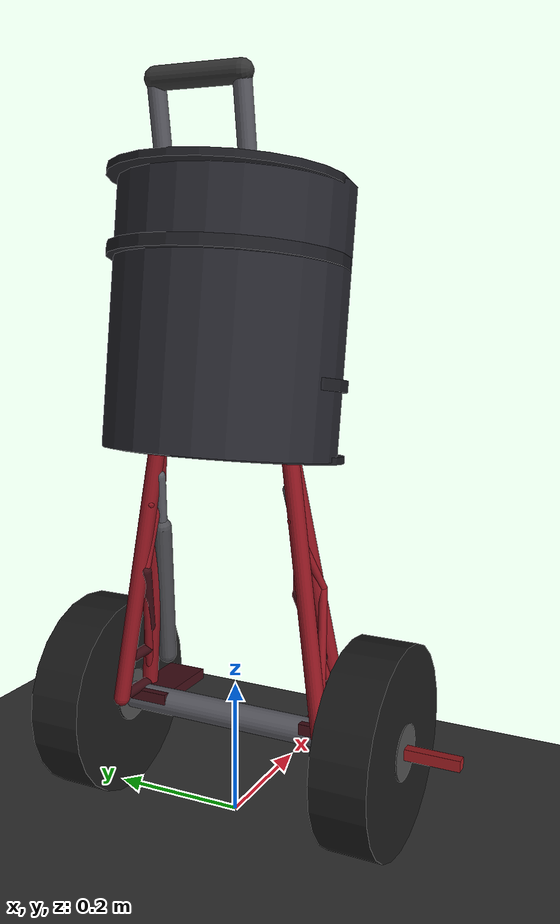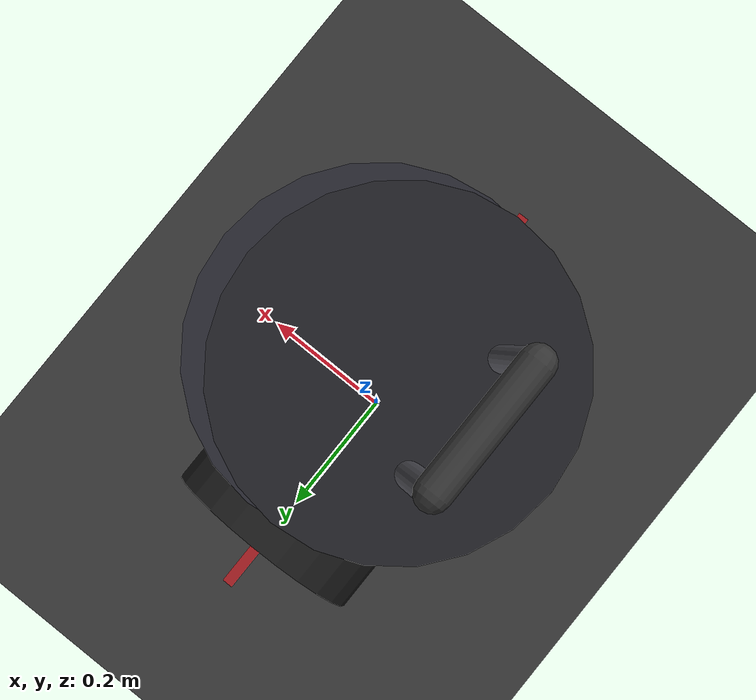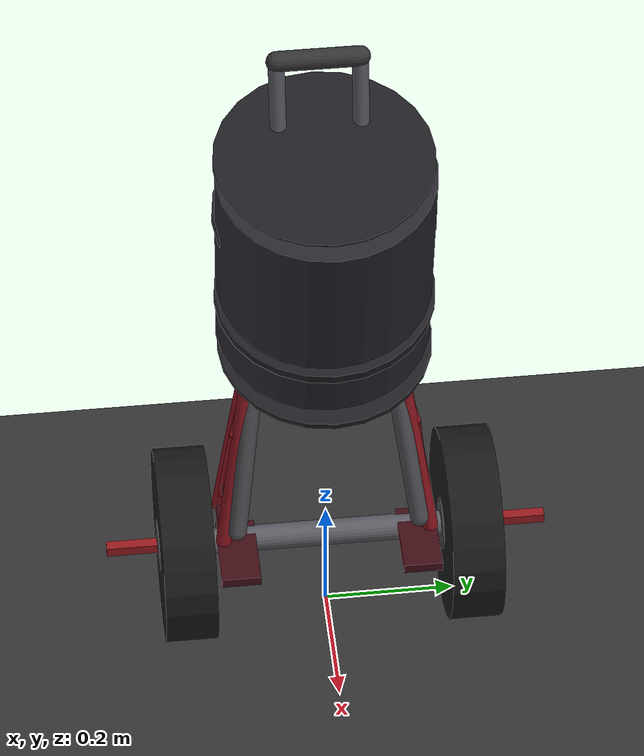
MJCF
<mujoco model="two_wheel_handle_robot">
  <compiler angle="radian" coordinate="local"/>

  <option timestep="0.002" gravity="0 0 -9.81" integrator="RK4">
    <flag warmstart="enable"/>
  </option>

  <default>
    <joint damping="0.05" armature="0.01"/>
    <geom contype="1" conaffinity="1" friction="1.5 0.005 0.0001"/>
    <motor ctrllimited="true" ctrlrange="-15 15"/>
  </default>

  <asset>
    <!-- Sky -->
    <texture type="skybox" builtin="gradient" rgb1="0.4 0.6 0.8" rgb2="0.05 0.05 0.15" width="512" height="512"/>
    <!-- Ground -->
    <texture name="texplane" type="2d" builtin="checker" rgb1="0.25 0.25 0.25" rgb2="0.15 0.15 0.15"
             width="512" height="512" mark="cross" markrgb="0.6 0.6 0.6"/>
    <material name="matplane" reflectance="0.3" texture="texplane" texrepeat="5 5" texuniform="true"/>
    <!-- Body materials -->
    <material name="barrel_body" rgba="0.15 0.15 0.18 1" specular="0.3" shininess="0.5"/>
    <material name="barrel_cap" rgba="0.12 0.12 0.14 1" specular="0.2"/>
    <material name="frame_red" rgba="0.55 0.08 0.12 1" specular="0.4" shininess="0.6"/>
    <material name="frame_dark" rgba="0.25 0.05 0.08 1" specular="0.3"/>
    <material name="wheel_rubber" rgba="0.1 0.1 0.1 1" specular="0.1"/>
    <material name="wheel_rim" rgba="0.6 0.1 0.12 1" specular="0.5" shininess="0.7"/>
    <material name="wheel_hub" rgba="0.3 0.3 0.3 1" specular="0.4"/>
    <material name="axle_metal" rgba="0.35 0.35 0.38 1" specular="0.5"/>
    <material name="spring_metal" rgba="0.3 0.3 0.32 1" specular="0.4"/>
    <material name="handle_grip" rgba="0.2 0.2 0.2 1" specular="0.1"/>
  </asset>

  <worldbody>
    <!-- Ground -->
    <geom name="floor" pos="0 0 0" size="50 50 0.1" type="plane" material="matplane" condim="3"/>

    <!-- Lighting -->
    <light directional="true" diffuse="0.8 0.8 0.8" specular="0.3 0.3 0.3" pos="0 0 5" dir="0 0 -1"/>
    <light directional="true" diffuse="0.3 0.3 0.3" specular="0.1 0.1 0.1" pos="2 2 4" dir="-0.3 -0.3 -1"/>

    <!-- ROBOT BODY                                                    -->
    <!-- Wheel radius=0.15, axle height=0.15                          -->
    <body name="chassis" pos="0 0 0.15">
      <freejoint name="root"/>

      <!-- ===== WHEELS ===== -->
      <!-- Left Wheel -->
      <body name="left_wheel" pos="0 0.22 0">
        <joint name="left_wheel_joint" type="hinge" axis="0 1 0" damping="0.02" armature="0.005"/>
        <!-- Tire -->
        <geom name="left_tire" type="cylinder" size="0.15 0.04"
              euler="1.5708 0 0" material="wheel_rubber" mass="0.8"
              friction="2.0 0.005 0.0001" condim="4"/>
        <!-- Rim -->
        <geom name="left_rim" type="cylinder" size="0.11 0.035"
              euler="1.5708 0 0" material="wheel_rim" mass="0.1"
              contype="0" conaffinity="0"/>
        <!-- Hub -->
        <geom name="left_hub" type="cylinder" size="0.04 0.042"
              euler="1.5708 0 0" material="wheel_hub" mass="0.05"
              contype="0" conaffinity="0"/>
        <!-- Spokes (visual) -->
        <geom name="left_spoke1" type="box" size="0.12 0.008 0.008"
              pos="0 0 0" euler="1.5708 0 0" material="wheel_rim" mass="0.01"
              contype="0" conaffinity="0"/>
        <geom name="left_spoke2" type="box" size="0.008 0.008 0.12"
              pos="0 0 0" euler="1.5708 0 0" material="wheel_rim" mass="0.01"
              contype="0" conaffinity="0"/>
      </body>

      <!-- Right Wheel -->
      <body name="right_wheel" pos="0 -0.22 0">
        <joint name="right_wheel_joint" type="hinge" axis="0 1 0" damping="0.02" armature="0.005"/>
        <!-- Tire -->
        <geom name="right_tire" type="cylinder" size="0.15 0.04"
              euler="1.5708 0 0" material="wheel_rubber" mass="0.8"
              friction="2.0 0.005 0.0001" condim="4"/>
        <!-- Rim -->
        <geom name="right_rim" type="cylinder" size="0.11 0.035"
              euler="1.5708 0 0" material="wheel_rim" mass="0.1"
              contype="0" conaffinity="0"/>
        <!-- Hub -->
        <geom name="right_hub" type="cylinder" size="0.04 0.042"
              euler="1.5708 0 0" material="wheel_hub" mass="0.05"
              contype="0" conaffinity="0"/>
        <!-- Spokes (visual) -->
        <geom name="right_spoke1" type="box" size="0.12 0.008 0.008"
              pos="0 0 0" euler="1.5708 0 0" material="wheel_rim" mass="0.01"
              contype="0" conaffinity="0"/>
        <geom name="right_spoke2" type="box" size="0.008 0.008 0.12"
              pos="0 0 0" euler="1.5708 0 0" material="wheel_rim" mass="0.01"
              contype="0" conaffinity="0"/>
      </body>

      <!-- ===== AXLE BAR ===== -->
      <geom name="axle_bar" type="cylinder" size="0.02 0.22"
            pos="0 0 0" euler="1.5708 0 0" material="axle_metal" mass="0.3"
            contype="0" conaffinity="0"/>

      <!-- ===== LEFT LEG FRAME (red lattice truss) ===== -->
      <!-- Main upright strut -->
      <geom name="left_leg_main" type="capsule" size="0.012"
            fromto="0.02 0.16 0.02  -0.04 0.10 0.42" material="frame_red" mass="0.15"
            contype="0" conaffinity="0"/>
      <!-- Rear upright strut -->
      <geom name="left_leg_rear" type="capsule" size="0.012"
            fromto="-0.06 0.16 0.02  -0.04 0.10 0.42" material="frame_red" mass="0.15"
            contype="0" conaffinity="0"/>
      <!-- Cross braces -->
      <geom name="left_cross1" type="capsule" size="0.008"
            fromto="0.02 0.16 0.02  -0.06 0.16 0.02" material="frame_dark" mass="0.03"
            contype="0" conaffinity="0"/>
      <geom name="left_cross2" type="capsule" size="0.008"
            fromto="-0.01 0.14 0.12  -0.05 0.12 0.22" material="frame_dark" mass="0.03"
            contype="0" conaffinity="0"/>
      <geom name="left_cross3" type="capsule" size="0.008"
            fromto="0.0 0.15 0.08  -0.06 0.15 0.08" material="frame_dark" mass="0.03"
            contype="0" conaffinity="0"/>
      <!-- Diagonal lattice elements -->
      <geom name="left_diag1" type="capsule" size="0.006"
            fromto="0.02 0.16 0.02  -0.05 0.12 0.22" material="frame_red" mass="0.02"
            contype="0" conaffinity="0"/>
      <geom name="left_diag2" type="capsule" size="0.006"
            fromto="-0.06 0.16 0.02  -0.01 0.14 0.22" material="frame_red" mass="0.02"
            contype="0" conaffinity="0"/>
      <geom name="left_diag3" type="capsule" size="0.006"
            fromto="-0.01 0.14 0.22  -0.05 0.11 0.32" material="frame_red" mass="0.02"
            contype="0" conaffinity="0"/>
      <geom name="left_diag4" type="capsule" size="0.006"
            fromto="-0.05 0.12 0.22  -0.03 0.11 0.32" material="frame_red" mass="0.02"
            contype="0" conaffinity="0"/>

      <!-- ===== RIGHT LEG FRAME (red lattice truss) ===== -->
      <!-- Main upright strut -->
      <geom name="right_leg_main" type="capsule" size="0.012"
            fromto="0.02 -0.16 0.02  -0.04 -0.10 0.42" material="frame_red" mass="0.15"
            contype="0" conaffinity="0"/>
      <!-- Rear upright strut -->
      <geom name="right_leg_rear" type="capsule" size="0.012"
            fromto="-0.06 -0.16 0.02  -0.04 -0.10 0.42" material="frame_red" mass="0.15"
            contype="0" conaffinity="0"/>
      <!-- Cross braces -->
      <geom name="right_cross1" type="capsule" size="0.008"
            fromto="0.02 -0.16 0.02  -0.06 -0.16 0.02" material="frame_dark" mass="0.03"
            contype="0" conaffinity="0"/>
      <geom name="right_cross2" type="capsule" size="0.008"
            fromto="-0.01 -0.14 0.12  -0.05 -0.12 0.22" material="frame_dark" mass="0.03"
            contype="0" conaffinity="0"/>
      <geom name="right_cross3" type="capsule" size="0.008"
            fromto="0.0 -0.15 0.08  -0.06 -0.15 0.08" material="frame_dark" mass="0.03"
            contype="0" conaffinity="0"/>
      <!-- Diagonal lattice elements -->
      <geom name="right_diag1" type="capsule" size="0.006"
            fromto="0.02 -0.16 0.02  -0.05 -0.12 0.22" material="frame_red" mass="0.02"
            contype="0" conaffinity="0"/>
      <geom name="right_diag2" type="capsule" size="0.006"
            fromto="-0.06 -0.16 0.02  -0.01 -0.14 0.22" material="frame_red" mass="0.02"
            contype="0" conaffinity="0"/>
      <geom name="right_diag3" type="capsule" size="0.006"
            fromto="-0.01 -0.14 0.22  -0.05 -0.11 0.32" material="frame_red" mass="0.02"
            contype="0" conaffinity="0"/>
      <geom name="right_diag4" type="capsule" size="0.006"
            fromto="-0.05 -0.12 0.22  -0.03 -0.11 0.32" material="frame_red" mass="0.02"
            contype="0" conaffinity="0"/>

      <!-- ===== SHOCK ABSORBER / SPRING LINKAGES ===== -->
      <!-- Left shock absorber -->
      <geom name="left_shock_outer" type="capsule" size="0.014"
            fromto="0.04 0.14 0.06  -0.02 0.11 0.28" material="spring_metal" mass="0.05"
            contype="0" conaffinity="0"/>
      <geom name="left_shock_inner" type="capsule" size="0.008"
            fromto="-0.02 0.11 0.28  -0.04 0.10 0.36" material="axle_metal" mass="0.03"
            contype="0" conaffinity="0"/>
      <!-- Right shock absorber -->
      <geom name="right_shock_outer" type="capsule" size="0.014"
            fromto="0.04 -0.14 0.06  -0.02 -0.11 0.28" material="spring_metal" mass="0.05"
            contype="0" conaffinity="0"/>
      <geom name="right_shock_inner" type="capsule" size="0.008"
            fromto="-0.02 -0.11 0.28  -0.04 -0.10 0.36" material="axle_metal" mass="0.03"
            contype="0" conaffinity="0"/>

      <!-- ===== BARREL BODY (large dark cylinder on top) ===== -->
      <!-- Main barrel cylinder -->
      <geom name="barrel_main" type="cylinder" size="0.16 0.18"
            pos="-0.02 0 0.58" euler="0 0.15 0" material="barrel_body" mass="5.0"
            contype="0" conaffinity="0"/>
      <!-- Front cap -->
      <geom name="barrel_cap_front" type="cylinder" size="0.16 0.005"
            pos="-0.02 0 0.76" euler="0 0.15 0" material="barrel_cap" mass="0.1"
            contype="0" conaffinity="0"/>
      <!-- Rear cap -->
      <geom name="barrel_cap_rear" type="cylinder" size="0.16 0.005"
            pos="-0.02 0 0.40" euler="0 0.15 0" material="barrel_cap" mass="0.1"
            contype="0" conaffinity="0"/>
      <!-- Barrel ribs (decorative bands) -->
      <geom name="barrel_rib1" type="cylinder" size="0.163 0.008"
            pos="-0.02 0 0.50" euler="0 0.15 0" material="barrel_cap" mass="0.02"
            contype="0" conaffinity="0"/>
      <geom name="barrel_rib2" type="cylinder" size="0.163 0.008"
            pos="-0.02 0 0.66" euler="0 0.15 0" material="barrel_cap" mass="0.02"
            contype="0" conaffinity="0"/>
      <!-- Barrel mounting bracket (connects barrel to legs) -->
      <geom name="barrel_bracket_left" type="capsule" size="0.015"
            fromto="-0.04 0.10 0.42  -0.03 0.08 0.48" material="axle_metal" mass="0.05"
            contype="0" conaffinity="0"/>
      <geom name="barrel_bracket_right" type="capsule" size="0.015"
            fromto="-0.04 -0.10 0.42  -0.03 -0.08 0.48" material="axle_metal" mass="0.05"
            contype="0" conaffinity="0"/>

      <!-- ===== HANDLE / GRIP (on top rear of barrel) ===== -->
      <geom name="handle_post_left" type="capsule" size="0.012"
            fromto="-0.08 0.06 0.76  -0.10 0.06 0.88" material="axle_metal" mass="0.02"
            contype="0" conaffinity="0"/>
      <geom name="handle_post_right" type="capsule" size="0.012"
            fromto="-0.08 -0.06 0.76  -0.10 -0.06 0.88" material="axle_metal" mass="0.02"
            contype="0" conaffinity="0"/>
      <geom name="handle_bar" type="capsule" size="0.015"
            fromto="-0.10 0.06 0.88  -0.10 -0.06 0.88" material="handle_grip" mass="0.03"
            contype="0" conaffinity="0"/>

      <!-- ===== FOOT PEG PLATFORMS ===== -->
      <geom name="left_footpeg" type="box" size="0.06 0.03 0.008"
            pos="0.04 0.14 0.01" material="frame_dark" mass="0.05"
            contype="0" conaffinity="0"/>
      <geom name="right_footpeg" type="box" size="0.06 0.03 0.008"
            pos="0.04 -0.14 0.01" material="frame_dark" mass="0.05"
            contype="0" conaffinity="0"/>

      <!-- ===== SENSOR SITE ===== -->
      <site name="imu" pos="0 0 0.45" size="0.005"/>
      <site name="barrel_center" pos="-0.02 0 0.58" size="0.005"/>
    </body>
  </worldbody>

  <actuator>
    <motor name="left_motor"  joint="left_wheel_joint"  gear="1" ctrllimited="true" ctrlrange="-15 15"/>
    <motor name="right_motor" joint="right_wheel_joint" gear="1" ctrllimited="true" ctrlrange="-15 15"/>
  </actuator>

  <sensor>
    <!-- Orientation -->
    <framequat name="body_quat" objtype="body" objname="chassis"/>
    <gyro name="body_gyro" site="imu"/>
    <accelerometer name="body_accel" site="imu"/>

    <!-- Position / velocity -->
    <framepos name="body_pos" objtype="body" objname="chassis"/>
    <framelinvel name="body_vel" objtype="body" objname="chassis"/>

    <!-- Wheel encoders -->
    <jointpos name="left_wheel_pos"  joint="left_wheel_joint"/>
    <jointvel name="left_wheel_vel"  joint="left_wheel_joint"/>
    <jointpos name="right_wheel_pos" joint="right_wheel_joint"/>
    <jointvel name="right_wheel_vel" joint="right_wheel_joint"/>
  </sensor>
</mujoco>
